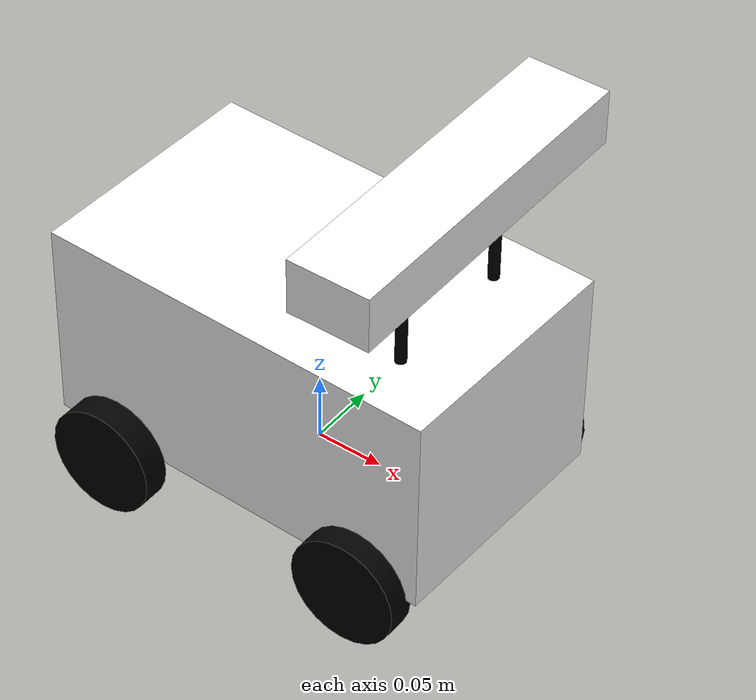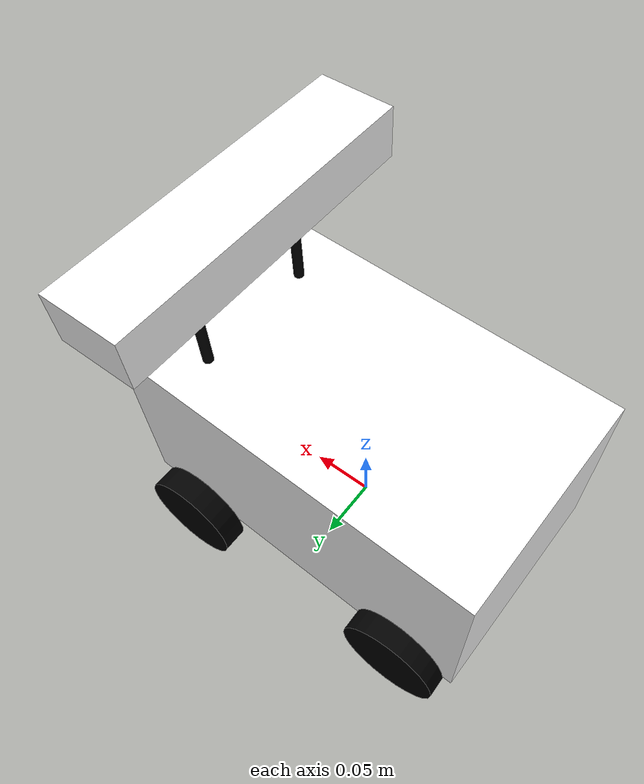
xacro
<?xml version="1.0"?>

<robot xmlns:xacro="http://www.ros.org/wiki/xacro"
 	xmlns:sensor="http://playerstage.sourceforge.net/gazebo/xmlschema/#sensor"
    	xmlns:controller="http://playerstage.sourceforge.net/gazebo/xmlschema/#controller"
    	xmlns:interface="http://playerstage.sourceforge.net/gazebo/xmlschema/#interface"
	name="robot1_xacro">

	<xacro:property name="length_wheel" value="0.02" />
	<xacro:property name="radius_wheel" value="0.04" />

	<xacro:property name="length_pillar" value="0.075" />
	<xacro:property name="radius_pillar" value="0.004" />

	<xacro:macro name="default_inertial" params="mass">
               <inertial>
                       <mass value="${mass}" />
                       <inertia ixx="1.0" ixy="0.0" ixz="0.0"
                                iyy="1.0" iyz="0.0"
                                izz="1.0" />
               </inertial>
	</xacro:macro>

	<link name="base_footprint">
   		<visual>
			<geometry>
      				<box size="0.001 0.001 0.001"/>
     			</geometry>
			<origin rpy="0 0 0" xyz="0 0 0"/>
   		</visual>
 	</link>

	<joint name="base_footprint_joint" type="fixed">
		<origin xyz="0 0 0" />
		<parent link="base_footprint" />
		<child link="base_link" />
	</joint>

	<link name="base_link">
   		<visual>
			<geometry>
      				<box size="0.18 .3 .15"/>
     			</geometry>
			<origin rpy="0 0 1.54" xyz="0 0 0.08"/>
			<material name="white">
				<color rgba="1 1 1 1"/>
			</material>
   		</visual>
		<collision>
			<geometry>
       				<box size="0.18 .3 .15"/>
			</geometry>
		</collision>
 	</link>

 	<link name="wheel_1">
   		<visual>
     			<geometry>
       				<cylinder length="${length_wheel}" radius="${radius_wheel}"/>
     			</geometry>
			<origin rpy="0 0 0" xyz="0 0 0"/>
   			<material name="black">
				<color rgba="0 0 0 1"/>
			</material>
		</visual>
		<collision>
			<geometry>
       				<cylinder length="${length_wheel}" radius="${radius_wheel}"/>
			</geometry>
		</collision>
		<xacro:default_inertial mass="1"/>
 	</link>

 	<link name="wheel_2">
   		<visual>
     			<geometry>
       				<cylinder length="${length_wheel}" radius="${radius_wheel}"/>
     			</geometry>
			<origin rpy="0 0 0" xyz="0 0 0"/>
   			<material name="black"/>
   		</visual>
		<collision>
			<geometry>
       				<cylinder length="${length_wheel}" radius="${radius_wheel}"/>
			</geometry>
		</collision>
		<xacro:default_inertial mass="1"/>

 	</link>

 	<link name="wheel_3">
   		<visual>
     			<geometry>
       				<cylinder length="${length_wheel}" radius="${radius_wheel}"/>
     			</geometry>

			<origin rpy="0 0 0" xyz="0 0 0"/>
   			<material name="black"/>
   		</visual>
		<collision>
			<geometry>
       				<cylinder length="${length_wheel}" radius="${radius_wheel}"/>
			</geometry>
		</collision>
		<xacro:default_inertial mass="1"/>
 	</link>

 	<link name="wheel_4">
   		<visual>
     			<geometry>
       				<cylinder length="${length_wheel}" radius="${radius_wheel}"/>
     			</geometry>
			<origin rpy="0 0 0" xyz="0 0 0" />
   			<material name="black"/>
   		</visual>
		<collision>
			<geometry>
       				<cylinder length="${length_wheel}" radius="${radius_wheel}"/>
			</geometry>
		</collision>
		<xacro:default_inertial mass="1"/>

 	</link>

        <link name="pillar_1">
   		<visual>
     			<geometry>
       				<cylinder length="${length_pillar}" radius="${radius_pillar}"/>
     			</geometry>
			<origin rpy="0 0 0" xyz="0 0 0" />
   			<material name="black"/>
   		</visual>
		<collision>
			<geometry>
       				<cylinder length="${length_pillar}" radius="${radius_pillar}"/>
			</geometry>
		</collision>
		<xacro:default_inertial mass="1"/>

 	</link>

        <link name="pillar_2">
   		<visual>
     			<geometry>
       				<cylinder length="${length_pillar}" radius="${radius_pillar}"/>
     			</geometry>
			<origin rpy="0 0 0" xyz="0 0 0" />
   			<material name="black"/>
   		</visual>
		<collision>
			<geometry>
       				<cylinder length="${length_pillar}" radius="${radius_pillar}"/>
			</geometry>
		</collision>
		<xacro:default_inertial mass="1"/>

 	</link>

 <!-- Laser -->
  <link name="base_laser">

   <visual>
      <geometry>
         <box size="0.06 0.25 0.04"/>
      </geometry>
      <origin rpy="0 0 0" xyz="0 0 0"/>
      <material name="black">
        <color rgba="1 1 1 1"/>
      </material>
   </visual>

    <collision>
      <origin xyz="0 0 0" rpy="0 0 0"/>
      <geometry>
	<box size="0.06 0.25 0.04"/>
      </geometry>
    </collision>

    <inertial>
      <mass value="1e-5" />
      <origin xyz="0 0 0" rpy="0 0 0"/>
      <inertia ixx="1e-6" ixy="0" ixz="0" iyy="1e-6" iyz="0" izz="1e-6" />
    </inertial>
  </link>

 <joint name="base_to_wheel1" type="continuous">
   <parent link="base_link"/>
   <child link="wheel_1"/>
   <origin rpy="1.5707 0 0" xyz="0.1 0.1 0"/>
   <axis xyz="0 0 1" />
 </joint>

 <joint name="base_to_wheel2" type="continuous">
   <axis xyz="0 0 1" />
   <anchor xyz="0 0 0" />
   <limit effort="100" velocity="100" />
   <parent link="base_link"/>
   <child link="wheel_2"/>
   <origin rpy="1.5707 0 0" xyz="-0.1 0.1 0"/>
</joint>

 <joint name="base_to_wheel3" type="continuous">
   <parent link="base_link"/>
   <axis xyz="0 0 1" />
   <child link="wheel_3"/>
   <origin rpy="1.5707 0 0" xyz="0.1 -0.1 0"/>
 </joint>

 <joint name="base_to_wheel4" type="continuous">
   <parent link="base_link"/>
   <axis xyz="0 0 1" />
   <child link="wheel_4"/>
   <origin rpy="1.5707 0 0" xyz="-0.1 -0.1 0"/>
 </joint>

 <joint name="base_to_pillar_1" type="fixed">
   <parent link="base_link"/>
   <child link="pillar_1"/>
   <origin rpy="0 0 0" xyz="0.1 0.05 0.1925"/>
   <axis xyz="0 0 1" />
 </joint>

 <joint name="base_to_pillar_2" type="fixed">
   <axis xyz="0 0 1" />
   <parent link="base_link"/>
   <child link="pillar_2"/>
   <origin rpy="0 0 0" xyz="0.1 -0.05 0.1925"/>
</joint>

  <joint name="base_to_laser" type="fixed">
    <axis xyz="0 1 0" />
    <origin xyz="0.1 0 0.25" rpy="0 0 0"/>
    <parent link="base_link"/>
    <child link="base_laser"/>
  </joint>

</robot>
